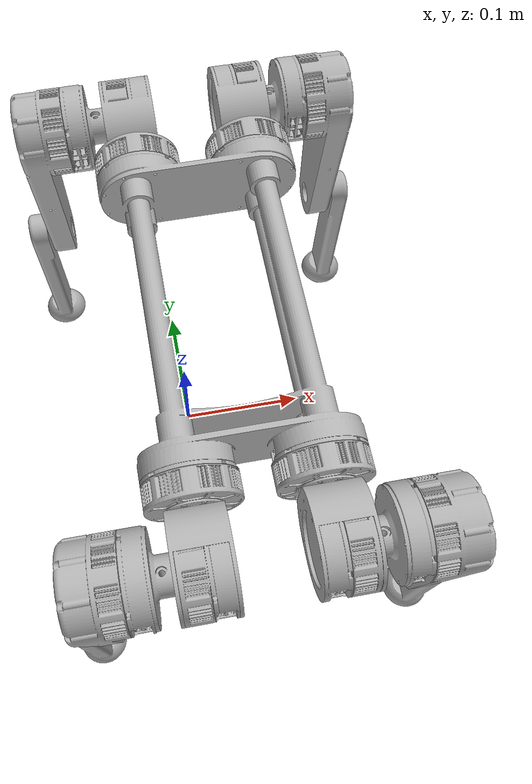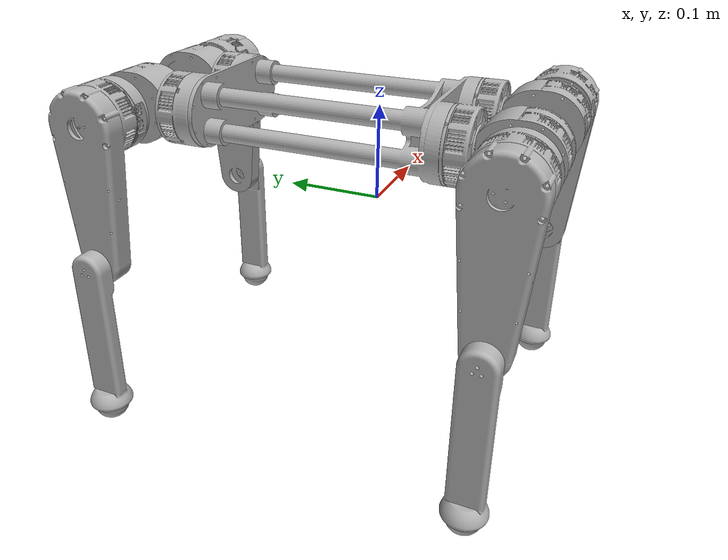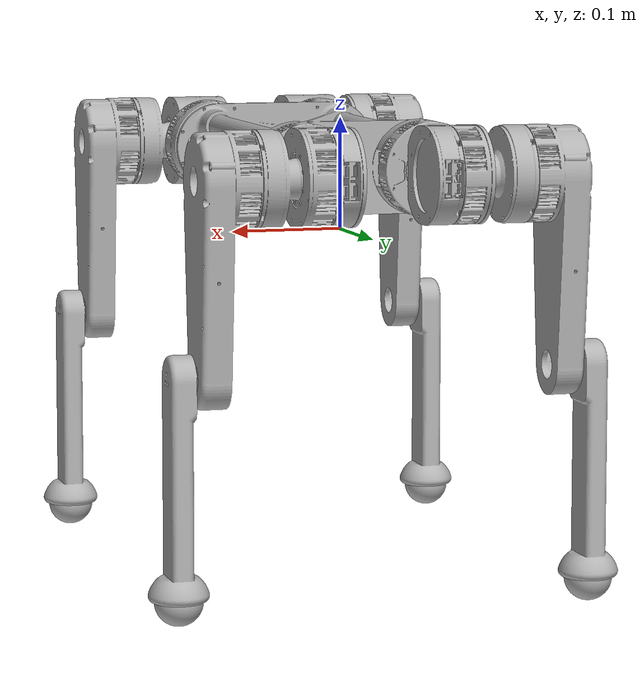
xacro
<?xml version="1.0" ?>
<robot name="ROS2" xmlns:xacro="http://www.ros.org/wiki/xacro">

<xacro:include filename="$(find ROS2_description)/urdf/materials.xacro" />
<xacro:include filename="$(find ROS2_description)/urdf/ROS2.trans" />
<xacro:include filename="$(find ROS2_description)/urdf/ROS2.gazebo" />
<link name="base_link">
  <inertial>
    <origin xyz="0.04377718305742502 0.0644992505719806 0.07168633955671418" rpy="0 0 0"/>
    <mass value="8.036922661444715"/>
    <inertia ixx="0.136153" iyy="0.028457" izz="0.157927" ixy="-0.0" iyz="3.3e-05" ixz="-0.0"/>
  </inertial>
  <visual>
    <origin xyz="0 0 0" rpy="0 0 0"/>
    <geometry>
      <mesh filename="package://ROS2_description/meshes/base_link.stl" scale="0.001 0.001 0.001"/>
    </geometry>
    <material name="silver"/>
  </visual>
  <collision>
    <origin xyz="0 0 0" rpy="0 0 0"/>
    <geometry>
      <mesh filename="package://ROS2_description/meshes/base_link.stl" scale="0.001 0.001 0.001"/>
    </geometry>
  </collision>
</link>

<link name="Front_Left_Foot_1">
  <inertial>
    <origin xyz="1.8153352240868337e-07 -1.2883260067098057e-07 -2.3300531548642311e-07" rpy="0 0 0"/>
    <mass value="0.2630560248605875"/>
    <inertia ixx="4.2e-05" iyy="4.2e-05" izz="4.2e-05" ixy="0.0" iyz="-0.0" ixz="-0.0"/>
  </inertial>
  <visual>
    <origin xyz="-0.218777 0.15102 0.266299" rpy="0 0 0"/>
    <geometry>
      <mesh filename="package://ROS2_description/meshes/Front_Left_Foot_1.stl" scale="0.001 0.001 0.001"/>
    </geometry>
    <material name="silver"/>
  </visual>
  <collision>
    <origin xyz="-0.218777 0.15102 0.266299" rpy="0 0 0"/>
    <geometry>
      <mesh filename="package://ROS2_description/meshes/Front_Left_Foot_1.stl" scale="0.001 0.001 0.001"/>
    </geometry>
  </collision>
</link>

<link name="Front_Left_Lower_1">
  <inertial>
    <origin xyz="0.018335862843839562 -2.3484038110560546e-05 -0.07786442860939159" rpy="0 0 0"/>
    <mass value="0.985488360252137"/>
    <inertia ixx="0.003602" iyy="0.00351" izz="0.000197" ixy="0.0" iyz="-2e-06" ixz="4.8e-05"/>
  </inertial>
  <visual>
    <origin xyz="-0.199777 0.15102 0.086299" rpy="0 0 0"/>
    <geometry>
      <mesh filename="package://ROS2_description/meshes/Front_Left_Lower_1.stl" scale="0.001 0.001 0.001"/>
    </geometry>
    <material name="silver"/>
  </visual>
  <collision>
    <origin xyz="-0.199777 0.15102 0.086299" rpy="0 0 0"/>
    <geometry>
      <mesh filename="package://ROS2_description/meshes/Front_Left_Lower_1.stl" scale="0.001 0.001 0.001"/>
    </geometry>
  </collision>
</link>

<link name="Front_Left_Upper_1">
  <inertial>
    <origin xyz="0.05591916152253307 1.045558514392586e-05 -0.03303093353351165" rpy="0 0 0"/>
    <mass value="2.3322194981471407"/>
    <inertia ixx="0.008147" iyy="0.008238" izz="0.002009" ixy="-2e-06" iyz="-1e-06" ixz="0.00128"/>
  </inertial>
  <visual>
    <origin xyz="-0.119777 0.15102 -0.071701" rpy="0 0 0"/>
    <geometry>
      <mesh filename="package://ROS2_description/meshes/Front_Left_Upper_1.stl" scale="0.001 0.001 0.001"/>
    </geometry>
    <material name="silver"/>
  </visual>
  <collision>
    <origin xyz="-0.119777 0.15102 -0.071701" rpy="0 0 0"/>
    <geometry>
      <mesh filename="package://ROS2_description/meshes/Front_Left_Upper_1.stl" scale="0.001 0.001 0.001"/>
    </geometry>
  </collision>
</link>

<link name="Front_Left_Shoulder_1">
  <inertial>
    <origin xyz="0.004639396483922406 -0.03952203621148265 1.9251547041507222e-05" rpy="0 0 0"/>
    <mass value="1.3447703130996655"/>
    <inertia ixx="0.001329" iyy="0.000857" izz="0.00095" ixy="3.1e-05" iyz="0.0" ixz="0.0"/>
  </inertial>
  <visual>
    <origin xyz="-0.096777 0.10552 -0.071701" rpy="0 0 0"/>
    <geometry>
      <mesh filename="package://ROS2_description/meshes/Front_Left_Shoulder_1.stl" scale="0.001 0.001 0.001"/>
    </geometry>
    <material name="silver"/>
  </visual>
  <collision>
    <origin xyz="-0.096777 0.10552 -0.071701" rpy="0 0 0"/>
    <geometry>
      <mesh filename="package://ROS2_description/meshes/Front_Left_Shoulder_1.stl" scale="0.001 0.001 0.001"/>
    </geometry>
  </collision>
</link>

<link name="Front_Right_Foot_1">
  <inertial>
    <origin xyz="1.815335368138271e-07 -1.2883260061546942e-07 -2.330053124333098e-07" rpy="0 0 0"/>
    <mass value="0.2630560248605875"/>
    <inertia ixx="4.2e-05" iyy="4.2e-05" izz="4.2e-05" ixy="-0.0" iyz="-0.0" ixz="0.0"/>
  </inertial>
  <visual>
    <origin xyz="0.131223 0.15102 0.266299" rpy="0 0 0"/>
    <geometry>
      <mesh filename="package://ROS2_description/meshes/Front_Right_Foot_1.stl" scale="0.001 0.001 0.001"/>
    </geometry>
    <material name="silver"/>
  </visual>
  <collision>
    <origin xyz="0.131223 0.15102 0.266299" rpy="0 0 0"/>
    <geometry>
      <mesh filename="package://ROS2_description/meshes/Front_Right_Foot_1.stl" scale="0.001 0.001 0.001"/>
    </geometry>
  </collision>
</link>

<link name="Front_Right_Lower_1">
  <inertial>
    <origin xyz="-0.018335545094527048 -2.3508883741057973e-05 -0.077865949504784" rpy="0 0 0"/>
    <mass value="0.985502752120821"/>
    <inertia ixx="0.003602" iyy="0.00351" izz="0.000197" ixy="-0.0" iyz="-2e-06" ixz="-4.8e-05"/>
  </inertial>
  <visual>
    <origin xyz="0.112223 0.15102 0.086299" rpy="0 0 0"/>
    <geometry>
      <mesh filename="package://ROS2_description/meshes/Front_Right_Lower_1.stl" scale="0.001 0.001 0.001"/>
    </geometry>
    <material name="silver"/>
  </visual>
  <collision>
    <origin xyz="0.112223 0.15102 0.086299" rpy="0 0 0"/>
    <geometry>
      <mesh filename="package://ROS2_description/meshes/Front_Right_Lower_1.stl" scale="0.001 0.001 0.001"/>
    </geometry>
  </collision>
</link>

<link name="Front_Right_Upper_1">
  <inertial>
    <origin xyz="-0.055918796518973066 1.0453934657206343e-05 -0.03303092294332154" rpy="0 0 0"/>
    <mass value="2.332219546028488"/>
    <inertia ixx="0.008147" iyy="0.008238" izz="0.002009" ixy="2e-06" iyz="-1e-06" ixz="-0.00128"/>
  </inertial>
  <visual>
    <origin xyz="0.032223 0.15102 -0.071701" rpy="0 0 0"/>
    <geometry>
      <mesh filename="package://ROS2_description/meshes/Front_Right_Upper_1.stl" scale="0.001 0.001 0.001"/>
    </geometry>
    <material name="silver"/>
  </visual>
  <collision>
    <origin xyz="0.032223 0.15102 -0.071701" rpy="0 0 0"/>
    <geometry>
      <mesh filename="package://ROS2_description/meshes/Front_Right_Upper_1.stl" scale="0.001 0.001 0.001"/>
    </geometry>
  </collision>
</link>

<link name="Fright_Right_Shoulder_1">
  <inertial>
    <origin xyz="-0.004639033314839549 -0.03952203577055696 1.9251393130317873e-05" rpy="0 0 0"/>
    <mass value="1.3447703291432425"/>
    <inertia ixx="0.001329" iyy="0.000857" izz="0.00095" ixy="-3.1e-05" iyz="0.0" ixz="-0.0"/>
  </inertial>
  <visual>
    <origin xyz="0.009223 0.10552 -0.071701" rpy="0 0 0"/>
    <geometry>
      <mesh filename="package://ROS2_description/meshes/Fright_Right_Shoulder_1.stl" scale="0.001 0.001 0.001"/>
    </geometry>
    <material name="silver"/>
  </visual>
  <collision>
    <origin xyz="0.009223 0.10552 -0.071701" rpy="0 0 0"/>
    <geometry>
      <mesh filename="package://ROS2_description/meshes/Fright_Right_Shoulder_1.stl" scale="0.001 0.001 0.001"/>
    </geometry>
  </collision>
</link>

<link name="Back_Left_Foot_1">
  <inertial>
    <origin xyz="-4.769234756563101e-07 -1.288325916504185e-07 -1.9280291724266263e-07" rpy="0 0 0"/>
    <mass value="0.2630560248605875"/>
    <inertia ixx="4.2e-05" iyy="4.2e-05" izz="4.2e-05" ixy="0.0" iyz="-0.0" ixz="-0.0"/>
  </inertial>
  <visual>
    <origin xyz="-0.21892 -0.28598 0.266358" rpy="0 0 0"/>
    <geometry>
      <mesh filename="package://ROS2_description/meshes/Back_Left_Foot_1.stl" scale="0.001 0.001 0.001"/>
    </geometry>
    <material name="silver"/>
  </visual>
  <collision>
    <origin xyz="-0.21892 -0.28598 0.266358" rpy="0 0 0"/>
    <geometry>
      <mesh filename="package://ROS2_description/meshes/Back_Left_Foot_1.stl" scale="0.001 0.001 0.001"/>
    </geometry>
  </collision>
</link>

<link name="Back_Left_Lower_1">
  <inertial>
    <origin xyz="0.018335204386841497 -2.348403810226163e-05 -0.07786438840699332" rpy="0 0 0"/>
    <mass value="0.985488360252137"/>
    <inertia ixx="0.003602" iyy="0.00351" izz="0.000197" ixy="0.0" iyz="-2e-06" ixz="4.8e-05"/>
  </inertial>
  <visual>
    <origin xyz="-0.19992 -0.28598 0.086358" rpy="0 0 0"/>
    <geometry>
      <mesh filename="package://ROS2_description/meshes/Back_Left_Lower_1.stl" scale="0.001 0.001 0.001"/>
    </geometry>
    <material name="silver"/>
  </visual>
  <collision>
    <origin xyz="-0.19992 -0.28598 0.086358" rpy="0 0 0"/>
    <geometry>
      <mesh filename="package://ROS2_description/meshes/Back_Left_Lower_1.stl" scale="0.001 0.001 0.001"/>
    </geometry>
  </collision>
</link>

<link name="Back_Left_Upper_1">
  <inertial>
    <origin xyz="0.055918503065534836 1.0455585150670466e-05 -0.033030893331113614" rpy="0 0 0"/>
    <mass value="2.3322194981471407"/>
    <inertia ixx="0.008147" iyy="0.008238" izz="0.002009" ixy="-2e-06" iyz="-1e-06" ixz="0.00128"/>
  </inertial>
  <visual>
    <origin xyz="-0.11992 -0.28598 -0.071642" rpy="0 0 0"/>
    <geometry>
      <mesh filename="package://ROS2_description/meshes/Back_Left_Upper_1.stl" scale="0.001 0.001 0.001"/>
    </geometry>
    <material name="silver"/>
  </visual>
  <collision>
    <origin xyz="-0.11992 -0.28598 -0.071642" rpy="0 0 0"/>
    <geometry>
      <mesh filename="package://ROS2_description/meshes/Back_Left_Upper_1.stl" scale="0.001 0.001 0.001"/>
    </geometry>
  </collision>
</link>

<link name="Back_Left_Shoulder_1">
  <inertial>
    <origin xyz="0.004638738026924466 0.03952177772311974 -1.9676770041429648e-05" rpy="0 0 0"/>
    <mass value="1.344770313099662"/>
    <inertia ixx="0.001329" iyy="0.000857" izz="0.00095" ixy="-3.1e-05" iyz="0.0" ixz="-0.0"/>
  </inertial>
  <visual>
    <origin xyz="-0.09692 -0.24048 -0.071642" rpy="0 0 0"/>
    <geometry>
      <mesh filename="package://ROS2_description/meshes/Back_Left_Shoulder_1.stl" scale="0.001 0.001 0.001"/>
    </geometry>
    <material name="silver"/>
  </visual>
  <collision>
    <origin xyz="-0.09692 -0.24048 -0.071642" rpy="0 0 0"/>
    <geometry>
      <mesh filename="package://ROS2_description/meshes/Back_Left_Shoulder_1.stl" scale="0.001 0.001 0.001"/>
    </geometry>
  </collision>
</link>

<link name="Back_Right_Foot_1">
  <inertial>
    <origin xyz="-1.6000946473360145e-07 -1.2883259159490734e-07 -1.928029141895493e-07" rpy="0 0 0"/>
    <mass value="0.2630560248605875"/>
    <inertia ixx="4.2e-05" iyy="4.2e-05" izz="4.2e-05" ixy="-0.0" iyz="-0.0" ixz="0.0"/>
  </inertial>
  <visual>
    <origin xyz="0.131365 -0.28598 0.266358" rpy="0 0 0"/>
    <geometry>
      <mesh filename="package://ROS2_description/meshes/Back_Right_Foot_1.stl" scale="0.001 0.001 0.001"/>
    </geometry>
    <material name="silver"/>
  </visual>
  <collision>
    <origin xyz="0.131365 -0.28598 0.266358" rpy="0 0 0"/>
    <geometry>
      <mesh filename="package://ROS2_description/meshes/Back_Right_Foot_1.stl" scale="0.001 0.001 0.001"/>
    </geometry>
  </collision>
</link>

<link name="Back_Right_Lower_1">
  <inertial>
    <origin xyz="-0.01833588663752854 -2.3508883732703545e-05 -0.07786590930238567" rpy="0 0 0"/>
    <mass value="0.985502752120821"/>
    <inertia ixx="0.003602" iyy="0.00351" izz="0.000197" ixy="-0.0" iyz="-2e-06" ixz="-4.8e-05"/>
  </inertial>
  <visual>
    <origin xyz="0.112365 -0.28598 0.086358" rpy="0 0 0"/>
    <geometry>
      <mesh filename="package://ROS2_description/meshes/Back_Right_Lower_1.stl" scale="0.001 0.001 0.001"/>
    </geometry>
    <material name="silver"/>
  </visual>
  <collision>
    <origin xyz="0.112365 -0.28598 0.086358" rpy="0 0 0"/>
    <geometry>
      <mesh filename="package://ROS2_description/meshes/Back_Right_Lower_1.stl" scale="0.001 0.001 0.001"/>
    </geometry>
  </collision>
</link>

<link name="Back_Right_Upper_1">
  <inertial>
    <origin xyz="-0.055919138061974384 1.045393466381217e-05 -0.03303088274092351" rpy="0 0 0"/>
    <mass value="2.332219546028488"/>
    <inertia ixx="0.008147" iyy="0.008238" izz="0.002009" ixy="2e-06" iyz="-1e-06" ixz="-0.00128"/>
  </inertial>
  <visual>
    <origin xyz="0.032365 -0.28598 -0.071642" rpy="0 0 0"/>
    <geometry>
      <mesh filename="package://ROS2_description/meshes/Back_Right_Upper_1.stl" scale="0.001 0.001 0.001"/>
    </geometry>
    <material name="silver"/>
  </visual>
  <collision>
    <origin xyz="0.032365 -0.28598 -0.071642" rpy="0 0 0"/>
    <geometry>
      <mesh filename="package://ROS2_description/meshes/Back_Right_Upper_1.stl" scale="0.001 0.001 0.001"/>
    </geometry>
  </collision>
</link>

<link name="Back_Right_Shoulder_1">
  <inertial>
    <origin xyz="-0.004639374857841083 0.03952177728219433 -1.967661612427285e-05" rpy="0 0 0"/>
    <mass value="1.3447703291432433"/>
    <inertia ixx="0.001329" iyy="0.000857" izz="0.00095" ixy="3.1e-05" iyz="0.0" ixz="0.0"/>
  </inertial>
  <visual>
    <origin xyz="0.009365 -0.24048 -0.071642" rpy="0 0 0"/>
    <geometry>
      <mesh filename="package://ROS2_description/meshes/Back_Right_Shoulder_1.stl" scale="0.001 0.001 0.001"/>
    </geometry>
    <material name="silver"/>
  </visual>
  <collision>
    <origin xyz="0.009365 -0.24048 -0.071642" rpy="0 0 0"/>
    <geometry>
      <mesh filename="package://ROS2_description/meshes/Back_Right_Shoulder_1.stl" scale="0.001 0.001 0.001"/>
    </geometry>
  </collision>
</link>

<joint name="Front Left Foot" type="fixed">
  <origin xyz="0.019 0.0 -0.18" rpy="0 0 0"/>
  <parent link="Front_Left_Lower_1"/>
  <child link="Front_Left_Foot_1"/>
</joint>

<joint name="Front Left Lower" type="continuous">
  <origin xyz="0.08 0.0 -0.158" rpy="0 0 0"/>
  <parent link="Front_Left_Upper_1"/>
  <child link="Front_Left_Lower_1"/>
  <axis xyz="-1.0 -0.0 0.0"/>
</joint>

<joint name="Front Left Upper" type="continuous">
  <origin xyz="0.023 -0.0455 0.0" rpy="0 0 0"/>
  <parent link="Front_Left_Shoulder_1"/>
  <child link="Front_Left_Upper_1"/>
  <axis xyz="1.0 0.0 -0.0"/>
</joint>

<joint name="Front Left Shoulder" type="continuous">
  <origin xyz="0.096777 -0.10552 0.071701" rpy="0 0 0"/>
  <parent link="base_link"/>
  <child link="Front_Left_Shoulder_1"/>
  <axis xyz="-0.0 -1.0 -0.0"/>
</joint>

<joint name="Front Right Foot" type="fixed">
  <origin xyz="-0.019 0.0 -0.18" rpy="0 0 0"/>
  <parent link="Front_Right_Lower_1"/>
  <child link="Front_Right_Foot_1"/>
</joint>

<joint name="Front Right Lower" type="continuous">
  <origin xyz="-0.08 0.0 -0.158" rpy="0 0 0"/>
  <parent link="Front_Right_Upper_1"/>
  <child link="Front_Right_Lower_1"/>
  <axis xyz="-1.0 0.0 -0.0"/>
</joint>

<joint name="Front Right Upper" type="continuous">
  <origin xyz="-0.023 -0.0455 0.0" rpy="0 0 0"/>
  <parent link="Fright_Right_Shoulder_1"/>
  <child link="Front_Right_Upper_1"/>
  <axis xyz="1.0 -0.0 0.0"/>
</joint>

<joint name="Front Right Shoulder" type="continuous">
  <origin xyz="-0.009223 -0.10552 0.071701" rpy="0 0 0"/>
  <parent link="base_link"/>
  <child link="Fright_Right_Shoulder_1"/>
  <axis xyz="-0.0 1.0 0.0"/>
</joint>

<joint name="Back Left Foot" type="fixed">
  <origin xyz="0.019 0.0 -0.18" rpy="0 0 0"/>
  <parent link="Back_Left_Lower_1"/>
  <child link="Back_Left_Foot_1"/>
</joint>

<joint name="Back Left Lower" type="continuous">
  <origin xyz="0.08 0.0 -0.158" rpy="0 0 0"/>
  <parent link="Back_Left_Upper_1"/>
  <child link="Back_Left_Lower_1"/>
  <axis xyz="-1.0 -0.0 0.0"/>
</joint>

<joint name="Back Left Upper" type="continuous">
  <origin xyz="0.023 0.0455 0.0" rpy="0 0 0"/>
  <parent link="Back_Left_Shoulder_1"/>
  <child link="Back_Left_Upper_1"/>
  <axis xyz="1.0 0.0 -0.0"/>
</joint>

<joint name="Back Left Shoulder" type="continuous">
  <origin xyz="0.09692 0.24048 0.071642" rpy="0 0 0"/>
  <parent link="base_link"/>
  <child link="Back_Left_Shoulder_1"/>
  <axis xyz="-0.0 1.0 0.0"/>
</joint>

<joint name="Back Right Foot" type="fixed">
  <origin xyz="-0.019 0.0 -0.18" rpy="0 0 0"/>
  <parent link="Back_Right_Lower_1"/>
  <child link="Back_Right_Foot_1"/>
</joint>

<joint name="Back Right Lower" type="continuous">
  <origin xyz="-0.08 0.0 -0.158" rpy="0 0 0"/>
  <parent link="Back_Right_Upper_1"/>
  <child link="Back_Right_Lower_1"/>
  <axis xyz="-1.0 0.0 -0.0"/>
</joint>

<joint name="Revolute 15" type="continuous">
  <origin xyz="-0.023 0.0455 0.0" rpy="0 0 0"/>
  <parent link="Back_Right_Shoulder_1"/>
  <child link="Back_Right_Upper_1"/>
  <axis xyz="1.0 -0.0 0.0"/>
</joint>

<joint name="Revolute 16" type="continuous">
  <origin xyz="-0.009365 0.24048 0.071642" rpy="0 0 0"/>
  <parent link="base_link"/>
  <child link="Back_Right_Shoulder_1"/>
  <axis xyz="-0.0 -1.0 -0.0"/>
</joint>

</robot>

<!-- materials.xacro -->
<robot name="ROS2" xmlns:xacro="http://www.ros.org/wiki/xacro" >

<material name="silver">
  <color rgba="0.700 0.700 0.700 1.000"/>
</material>

</robot>

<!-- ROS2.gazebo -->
<robot name="ROS2" xmlns:xacro="http://www.ros.org/wiki/xacro" >

<xacro:property name="body_color" value="Gazebo/Silver" />

<gazebo>
  <plugin name="control" filename="libgazebo_ros_control.so"/>
</gazebo>
<gazebo reference="base_link">
  <material>${body_color}</material>
  <mu1>0.2</mu1>
  <mu2>0.2</mu2>
  <selfCollide>true</selfCollide>
  <gravity>true</gravity>
</gazebo>

<gazebo reference="Front_Left_Foot_1">
  <material>${body_color}</material>
  <mu1>0.2</mu1>
  <mu2>0.2</mu2>
  <selfCollide>true</selfCollide>
</gazebo>

<gazebo reference="Front_Left_Lower_1">
  <material>${body_color}</material>
  <mu1>0.2</mu1>
  <mu2>0.2</mu2>
  <selfCollide>true</selfCollide>
</gazebo>

<gazebo reference="Front_Left_Upper_1">
  <material>${body_color}</material>
  <mu1>0.2</mu1>
  <mu2>0.2</mu2>
  <selfCollide>true</selfCollide>
</gazebo>

<gazebo reference="Front_Left_Shoulder_1">
  <material>${body_color}</material>
  <mu1>0.2</mu1>
  <mu2>0.2</mu2>
  <selfCollide>true</selfCollide>
</gazebo>

<gazebo reference="Front_Right_Foot_1">
  <material>${body_color}</material>
  <mu1>0.2</mu1>
  <mu2>0.2</mu2>
  <selfCollide>true</selfCollide>
</gazebo>

<gazebo reference="Front_Right_Lower_1">
  <material>${body_color}</material>
  <mu1>0.2</mu1>
  <mu2>0.2</mu2>
  <selfCollide>true</selfCollide>
</gazebo>

<gazebo reference="Front_Right_Upper_1">
  <material>${body_color}</material>
  <mu1>0.2</mu1>
  <mu2>0.2</mu2>
  <selfCollide>true</selfCollide>
</gazebo>

<gazebo reference="Fright_Right_Shoulder_1">
  <material>${body_color}</material>
  <mu1>0.2</mu1>
  <mu2>0.2</mu2>
  <selfCollide>true</selfCollide>
</gazebo>

<gazebo reference="Back_Left_Foot_1">
  <material>${body_color}</material>
  <mu1>0.2</mu1>
  <mu2>0.2</mu2>
  <selfCollide>true</selfCollide>
</gazebo>

<gazebo reference="Back_Left_Lower_1">
  <material>${body_color}</material>
  <mu1>0.2</mu1>
  <mu2>0.2</mu2>
  <selfCollide>true</selfCollide>
</gazebo>

<gazebo reference="Back_Left_Upper_1">
  <material>${body_color}</material>
  <mu1>0.2</mu1>
  <mu2>0.2</mu2>
  <selfCollide>true</selfCollide>
</gazebo>

<gazebo reference="Back_Left_Shoulder_1">
  <material>${body_color}</material>
  <mu1>0.2</mu1>
  <mu2>0.2</mu2>
  <selfCollide>true</selfCollide>
</gazebo>

<gazebo reference="Back_Right_Foot_1">
  <material>${body_color}</material>
  <mu1>0.2</mu1>
  <mu2>0.2</mu2>
  <selfCollide>true</selfCollide>
</gazebo>

<gazebo reference="Back_Right_Lower_1">
  <material>${body_color}</material>
  <mu1>0.2</mu1>
  <mu2>0.2</mu2>
  <selfCollide>true</selfCollide>
</gazebo>

<gazebo reference="Back_Right_Upper_1">
  <material>${body_color}</material>
  <mu1>0.2</mu1>
  <mu2>0.2</mu2>
  <selfCollide>true</selfCollide>
</gazebo>

<gazebo reference="Back_Right_Shoulder_1">
  <material>${body_color}</material>
  <mu1>0.2</mu1>
  <mu2>0.2</mu2>
  <selfCollide>true</selfCollide>
</gazebo>

</robot>
